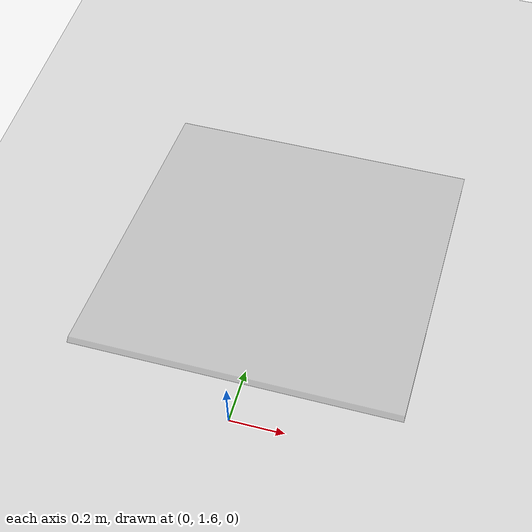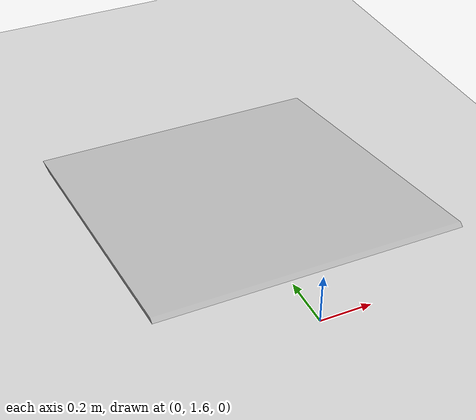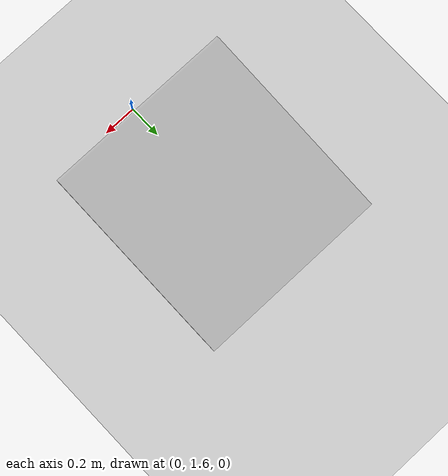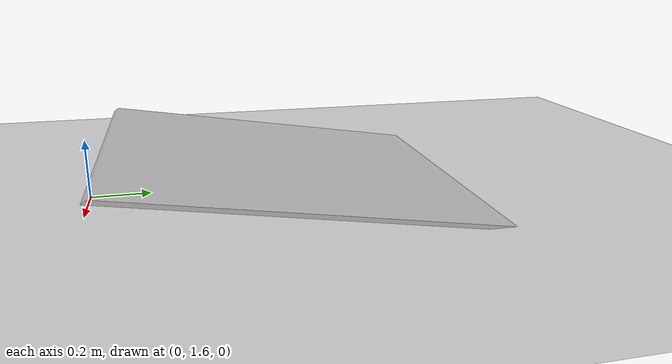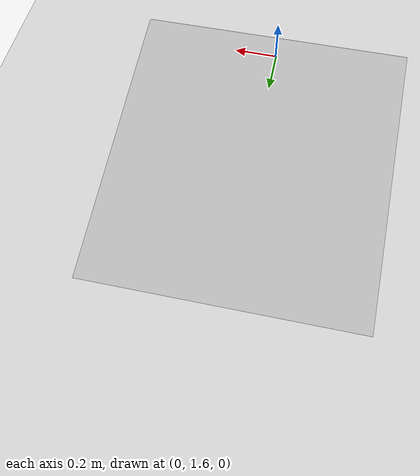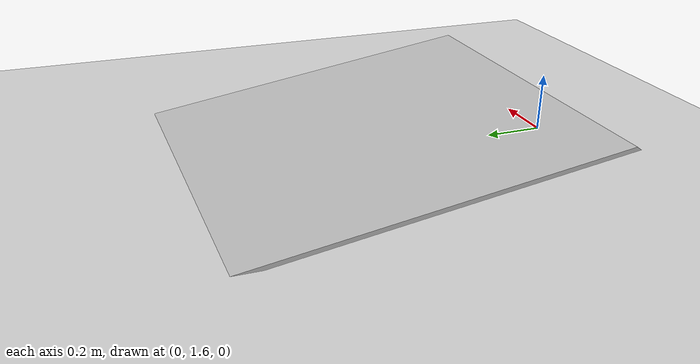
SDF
<?xml version="1.0" ?>
<sdf version="1.4">
  <world name="default">

    <!-- A global light source -->
    <include>
      <uri>model://sun</uri>
    </include>

    <include>
    <uri>model://ground_plane</uri>
    <pose>0 0 0 0 0 0</pose>
    <surface>
        <contact>
        <ode>
            <soft_cfm>0.00001</soft_cfm> <!-- Reduce numerical instability -->
            <soft_erp>0.8</soft_erp> <!-- Increase energy absorption -->
            <kp>10</kp>  <!-- High stiffness -->
            <kd>100000.0</kd>  <!-- Damping -->
        </ode>
        </contact>
        <bounce>
        <restitution_coefficient>0.0</restitution_coefficient> <!-- No bounce -->
        <threshold>0.01</threshold>
        </bounce>
        <friction>
        <ode>
            <mu>2.5</mu>  <!-- Increase friction -->
            <mu2>2.5</mu2>
            <slip1>0.0</slip1>
            <slip2>0.0</slip2>
        </ode>
        </friction>
    </surface>
    </include>

    <model name="ramp2">
      <static>true</static>
      <link name="nist_simple_ramp_120_link">
        <pose>0 2 -0.3 -0.94 0 0</pose>
        <collision name="collision">
        <geometry>
            <mesh>
            <uri>model://ramp2/meshes/nist_simple_ramp_120.dae</uri>
            <scale>1 1 1</scale>
            </mesh>
        </geometry>
        <surface>
            <contact>
            <ode>
                <soft_cfm>0.00001</soft_cfm> <!-- Reduce numerical instability -->
                <soft_erp>0.8</soft_erp> <!-- Increase energy restitution -->
                <kp>10</kp>  <!-- High stiffness -->
                <kd>100000.0</kd>  <!-- Damping -->
            </ode>
            </contact>
            <bounce>
            <restitution_coefficient>0.0</restitution_coefficient> <!-- No bounce -->
            <threshold>0.01</threshold>  <!-- Reduce unwanted bounce -->
            </bounce>
            <friction>
            <ode>
                <mu>1.1</mu>  <!-- High friction -->
                <mu2>1.1</mu2>
                <slip1>0.0</slip1>
                <slip2>0.0</slip2>
            </ode>
            </friction>
        </surface>
        </collision>
        <visual name="visual">
          <geometry>
            <mesh>
              <uri>model://ramp2/meshes/nist_simple_ramp_120.dae</uri>
              <scale>1 1 1</scale>
            </mesh>
          </geometry>
        </visual>
      </link>
    </model>

  </world>
</sdf>
